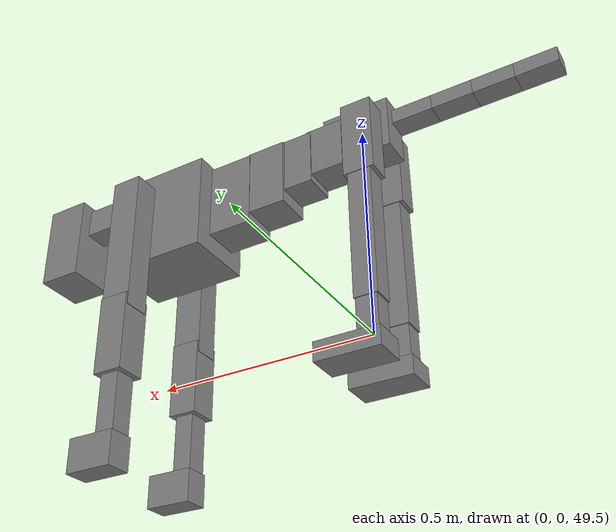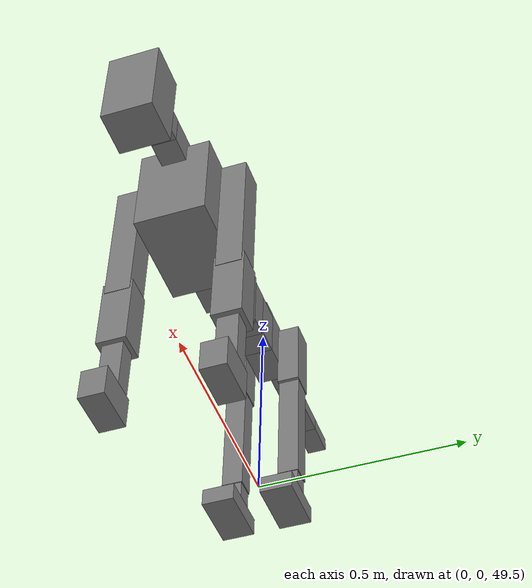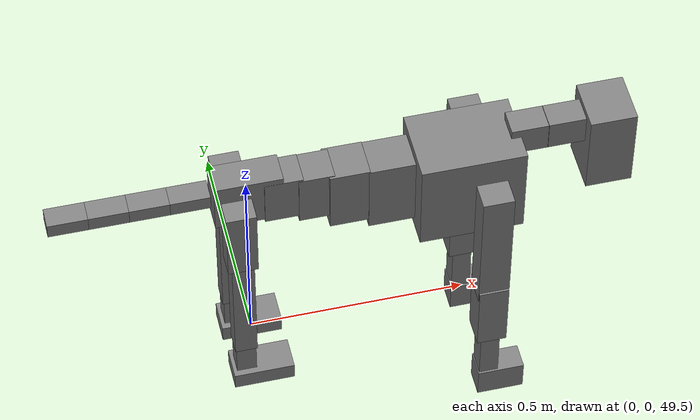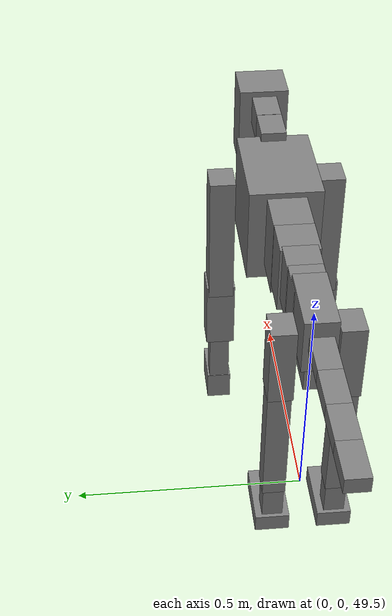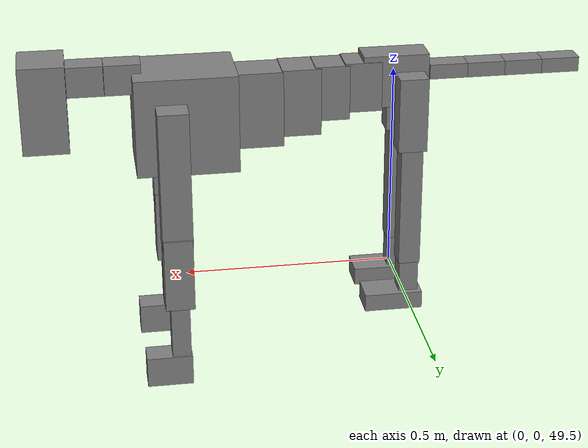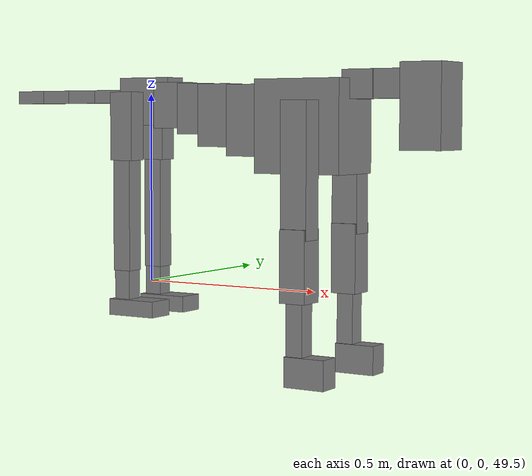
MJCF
<mujoco model="dog">

    <default>
        <joint armature="0.02" stiffness="1" damping="0.2" limited="true"/>
        <geom condim="3" friction="1 0.05 0.05" margin="0.01"/>
        <motor ctrllimited="true" ctrlrange="-1.0 1.0" forcelimited="true" gear="50"/>
    </default>

    <compiler inertiafromgeom="true" angle="radian"/>

    <option timestep="0.016" iterations="50" tolerance="1e-10" solver="Newton" jacobian="dense" cone="pyramidal"/>

    <size nconmax="20000" njmax="60000" nstack="5000000"/>
    <visual>
        <map force="0.1" zfar="30"/>
        <rgba haze="0.15 0.25 0.35 1"/>
        <quality shadowsize="2048"/>
        <global offwidth="800" offheight="800"/>
    </visual>

    <asset>
        <texture type="skybox" builtin="gradient" rgb1="0.3 0.5 0.7" rgb2="0 0 0" width="512" height="512"/>
        <texture name="texplane" type="2d" builtin="checker" rgb1=".2 .3 .4" rgb2=".1 0.15 0.2" width="512" height="512"
                 mark="cross" markrgb=".8 .8 .8"/>
        <texture name="texgeom" type="cube" builtin="flat" mark="cross" width="127" height="1278" rgb1="0.8 0.6 0.4"
                 rgb2="0.8 0.6 0.4" markrgb="1 1 1" random="0.01"/>

        <material name="matplane" reflectance="0.3" texture="texplane" texrepeat="1 1" texuniform="true"/>
        <material name="matgeom" texture="texgeom" texuniform="true" rgba="0.8 0.6 .4 1"/>
    </asset>

    <worldbody>
        <geom name="floor" pos="0 0 0" size="0 0 .25" type="plane" material="matplane" condim="3"/>

        <light directional="false" diffuse=".2 .2 .2" specular="0 0 0" pos="0 0 5" dir="0 0 -1" castshadow="false"/>
        <light mode="targetbodycom" target="torso" directional="false" diffuse=".8 .8 .8" specular="0.3 0.3 0.3"
               pos="0 0 4.0" dir="0 0 -1"/>

        <body name="root" pos="0 0 50">
            <freejoint name="root_1"/>
            <geom type="box" pos="0 0 -0.02" size="0.0774  0.0358  0.063" density="2030"/>

            <body name="spine1" pos="0.054 0 0">
                <joint name="spine1_y" axis="0 1 0" range="0 0.7" limited="true"/>
                <geom type="box" pos="0.02375 0 -0.03" size="0.04375  0.0375  0.05985" density="2030"/>

                <body name="spine2" pos="0.0612 0 0">
                    <joint name="spine2_y" axis="0 1 0" range="-0.15 0.15" limited="true"/>
                    <geom type="box" pos="0.03555  0  -0.04" size="0.04055  0.039  0.06615" density="2030"/>

                    <body name="spine3" pos="0.0730 0 0">
                        <joint name="spine3_y" axis="0 1 0" range="-0.15 0.15" limited="true"/>
                        <geom type="box" pos="0.03555  0  -0.057" size="0.04555  0.0445  0.081" density="2030"/>

                        <body name="spine4" pos="0.0780 0 0">
                            <joint name="spine4_y" axis="0 1 0" range="-0.15 0.15" limited="true"/>
                            <geom type="box" pos="0.05265  0  -0.07" size="0.05265  0.045  0.09135" density="2030"/>

                            <body name="torso" pos="0.1082 0 0">
                                <joint name="torso_y" axis="0 1 0" range="-0.15 0.15" limited="true"/>
                                <geom type="box" pos="0.11925  0  -0.085" size="0.11925  0.085  0.11745"
                                      density="2030"/>

                                <body name="neck1" pos="0.2160  0   0.0180">
                                    <joint name="neck1_y" axis="0 1 0" range="-1.2  -1" limited="true"/>
                                    <geom type="box" pos="0.0423  0  0" size="0.0423  0.03  0.036" density="2325"/>

                                    <body name="neck2" pos="0.0853  0  0">
                                        <joint name="neck2_y" axis="0 1 0" range="0.1  0" limited="true"/>
                                        <geom type="box" pos="0.0423  0  0" size="0.0423  0.03  0.036" density="2325"/>

                                        <body name="head" pos="0.0853  0  0">
                                            <joint name="head_y" axis="0 1 0" range="-0.3  -0.2" limited="true"/>
                                            <geom type="box" pos="0.0531  0  -0.055" size="0.0531  0.06  0.1044"
                                                  density="4030"/>

                                        </body>
                                    </body>
                                </body>

                                <body name="front_shoulder" pos="0.156  0   -0.0480">
                                    <joint name="front_shoulder_y" axis="0 1 0" range="-1 1.5" limited="true"/>
                                    <geom type="box" pos="0 0.13 -0.1420" size="0.0356  0.0304  0.1686" density="1158"/>
                                    <geom type="box" pos="0 -0.13 -0.1420" size="0.0356  0.0304  0.1686"
                                          density="1158"/>

                                    <body name="front_elbow" pos="0  0  -0.2839">
                                        <joint name="front_elbow_y" axis="0 1 0" range="-2 0" limited="true"/>
                                        <geom type="box" pos="0 0.13 -0.0896" size="0.0344  0.0351  0.0896"
                                              density="1081"/>
                                        <geom type="box" pos="0 -0.13 -0.0896" size="0.0344  0.0351  0.0896"
                                              density="1081"/>

                                        <body name="front_wrist" pos="0  0  -0.1791">
                                            <joint name="front_wrist_y" axis="0 1 0" range="-0.2 0" limited="true"/>
                                            <geom type="box" pos="0 0.13 -0.0725" size="0.0223  0.0248  0.0857"
                                                  density="1664"/>
                                            <geom type="box" pos="0 -0.13 -0.0725" size="0.0223  0.0248  0.0857"
                                                  density="1664"/>

                                            <body name="front_finger_end" pos="0  0  -0.1450">
                                                <joint name="front_finger_y" axis="0 1 0" range="-0.4 1"
                                                       limited="true"/>
                                                <geom type="box" pos="0.0297  0.13  -0.0224"
                                                      size="0.0544  0.0297  0.0374" density="1515"/>
                                                <geom type="box" pos="0.0297  -0.13  -0.0224"
                                                      size="0.0544  0.0297  0.0374" density="1515"/>

                                            </body>

                                        </body>
                                    </body>
                                </body>

                            </body>
                        </body>
                    </body>
                </body>
            </body>

            <body name="back_hip" pos="-0.03 0 -0.018">
                <joint name="back_hip_y" axis="0 1 0" range="-1.5 0.3" limited="true"/>
                <geom type="box" pos="0 0.07 -0.0673" size="0.0341  0.0268  0.0901" density="1154"/>
                <geom type="box" pos="0 -0.07 -0.0673" size="0.0341  0.0268  0.0901" density="1154"/>

                <body name="back_knee" pos="0  0  -0.1346">
                    <joint name="back_knee_y" axis="0 1 0" range="0 2.8" limited="true"/>
                    <geom type="box" pos="0 0.07 -0.1494" size="0.0257  0.0253  0.1649" density="1227"/>
                    <geom type="box" pos="0 -0.07 -0.1494" size="0.0257  0.0253  0.1649" density="1227"/>

                    <body name="back_ankle" pos="0  0  -0.2988">
                        <joint name="back_ankle_y" axis="0 1 0" range="-2.2 0" limited="true"/>
                        <geom type="box" pos="0 0.07 -0.0530" size="0.0230  0.0230  0.0643" density="1284"/>
                        <geom type="box" pos="0 -0.07 -0.0530" size="0.0230  0.0230  0.0643" density="1284"/>

                        <body name="back_toe_end" pos="0  0  -0.1061">
                            <joint name="back_toe_y" axis="0 1 0" range="-0.4 1" limited="true"/>
                            <geom type="box" pos="0.0381  0.07  -0.0062" size="0.0699  0.0381  0.0212" density="1515"/>
                            <geom type="box" pos="0.0381  -0.07  -0.0062" size="0.0699  0.0381  0.0212" density="1515"/>

                        </body>
                    </body>
                </body>
            </body>

            <body name="tail1" pos="-0.074 0 -0.006">
                <joint name="tail1_y" axis="0 1 0" range="-0.2 0.2" limited="true"/>
                <geom type="box" pos="-0.0536  0  0" size="0.045  0.025  0.0175" density="1587"/>

                <body name="tail2" pos="-0.09 0 0">
                    <joint name="tail2_y" axis="0 1 0" range="-0.2 0.2" limited="true"/>
                    <geom type="box" pos="-0.0536  0  0" size="0.045  0.025  0.0175" density="1587"/>

                    <body name="tail3" pos="-0.09 0 0">
                        <joint name="tail3_y" axis="0 1 0" range="-0.2 0.2" limited="true"/>
                        <geom type="box" pos="-0.0536  0  0" size="0.045  0.025  0.0175" density="1587"/>

                        <body name="tail4" pos="-0.09 0 0">
                            <joint name="tail4_y" axis="0 1 0" range="-0.2 0.2" limited="true"/>
                            <geom type="box" pos="-0.0536  0  0" size="0.045  0.025  0.0175" density="1587"/>

                        </body>
                    </body>
                </body>
            </body>
        </body>
    </worldbody>

    <actuator>
        <motor joint="spine1_y" forcerange="-150 150     "/>
        <motor joint="spine2_y" forcerange="-150 150     "/>
        <motor joint="spine3_y" forcerange="-150 150     "/>
        <motor joint="spine4_y" forcerange="-150 150     "/>
        <motor joint="torso_y" forcerange="-150 150     "/>
        <motor joint="neck1_y" forcerange="-100 100       "/>
        <motor joint="neck2_y" forcerange="-100 100       "/>
        <motor joint="head_y" forcerange="-150 150       "/>
        <motor joint="front_shoulder_y" forcerange="-140.60 162.05"/>
        <motor joint="front_elbow_y" forcerange="-178.37 177.03"/>
        <motor joint="front_wrist_y" forcerange="-147.05 51.27"/>
        <motor joint="front_finger_y" forcerange="-36.20 81.96"/>
        <motor joint="back_hip_y" forcerange="-202.34 354.35"/>
        <motor joint="back_knee_y" forcerange="-364.50 203.88"/>
        <motor joint="back_angle_y" forcerange="-71.91 195.79"/>
        <motor joint="back_toe_y" forcerange="-96.09 128.72"/>
        <motor joint="tail1_y" forcerange="-50 50     "/>
        <motor joint="tail2_y" forcerange="-50 50     "/>
        <motor joint="tail3_y" forcerange="-50 50     "/>
        <motor joint="tail4_y" forcerange="-50 50     "/>
    </actuator>
</mujoco>
